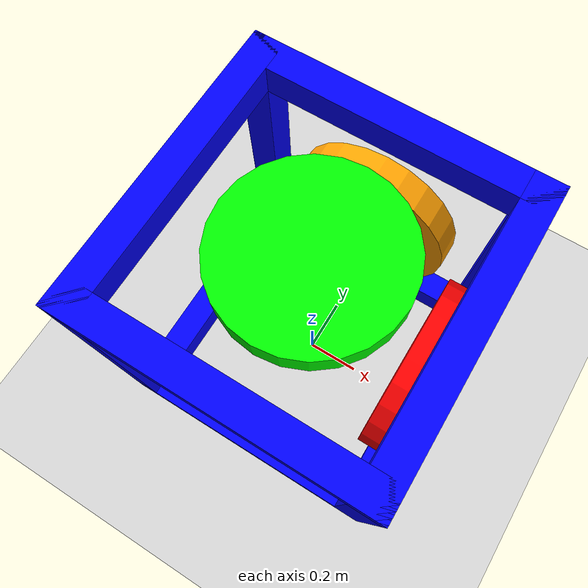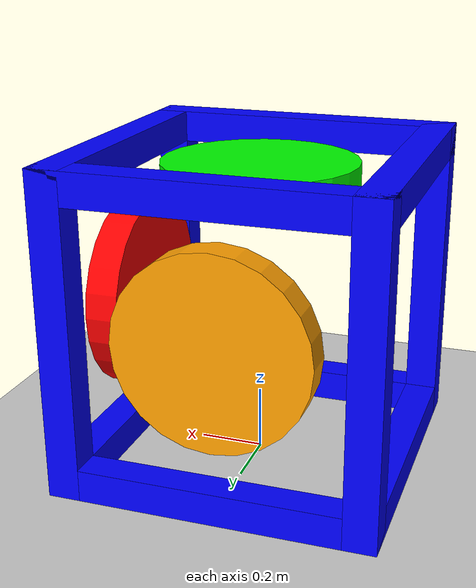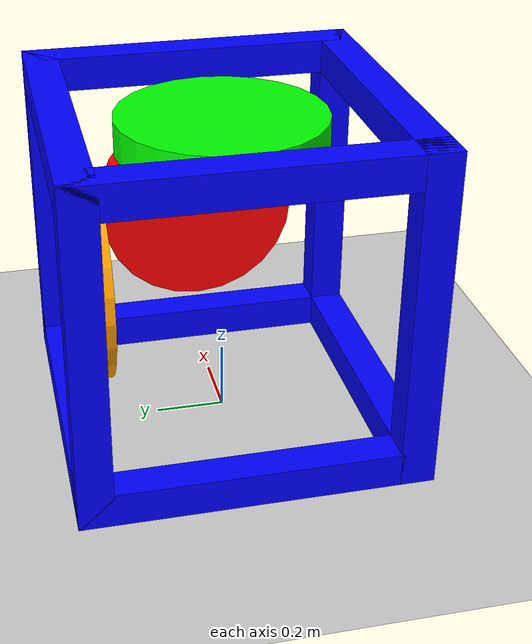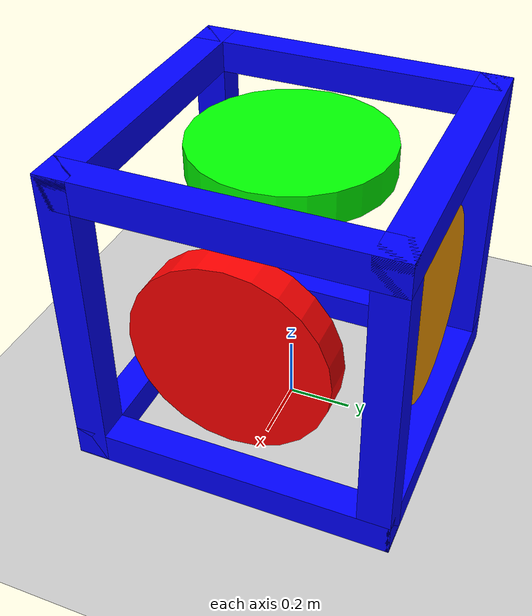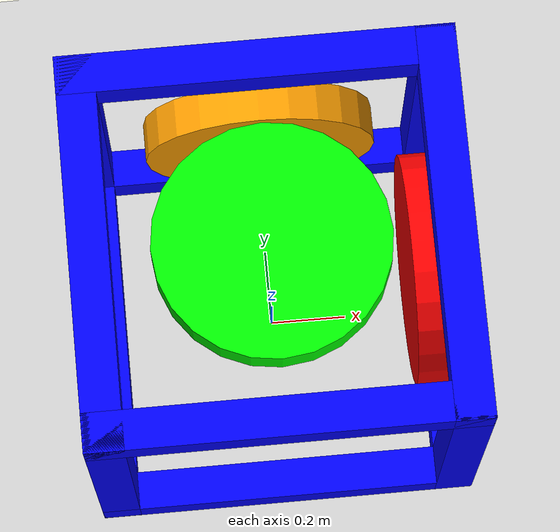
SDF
<?xml version='1.0' encoding='utf-8'?>
<sdf version="1.7">&lt;?xml version="1.0"?&gt;
	<world name="moving_cube">

		<physics name="1ms" type="ignored">
			<max_step_size>0.001</max_step_size>
			<real_time_factor>1.0</real_time_factor>
		</physics>
		<plugin
			filename="libignition-gazebo-physics-system.so"
			name="ignition::gazebo::systems::Physics">
		</plugin>
		<plugin
			filename="libignition-gazebo-user-commands-system.so"
			name="ignition::gazebo::systems::UserCommands">
		</plugin>
		<plugin
			filename="libignition-gazebo-scene-broadcaster-system.so"
			name="ignition::gazebo::systems::SceneBroadcaster">
		</plugin>

		<light type="directional" name="sun">
			<cast_shadows>true</cast_shadows>
			<pose>0 0 10 0 0 0</pose>
			<diffuse>0.8 0.8 0.8 1</diffuse>
			<specular>0.2 0.2 0.2 1</specular>
			<attenuation>
				<range>1000</range>
				<constant>0.9</constant>
				<linear>0.01</linear>
				<quadratic>0.001</quadratic>
			</attenuation>
			<direction>-0.5 0.1 -0.9</direction>
		</light>

		<model name="ground_plane">
			<static>true</static>
			<link name="link">
				<collision name="collision">
					<geometry>
					<plane>
						<normal>0 0 1</normal>
					</plane>
					</geometry>
				</collision>
				<visual name="visual">
					<geometry>
					<plane>
						<normal>0 0 1</normal>
						<size>100 100</size>
					</plane>
					</geometry>
					<material>
						<ambient>0.8 0.8 0.8 1</ambient>
						<diffuse>0.8 0.8 0.8 1</diffuse>
						<specular>0.8 0.8 0.8 1</specular>
					</material>
				</visual>
			</link>
		</model>

		  <model name="robot">
    <link name="cube_frame">
      <inertial>
        <pose>0 0 0.5 0 0 0</pose>
        <mass>1</mass>
        <inertia>
          <ixx>0.10000000000000001</ixx>
          <ixy>0</ixy>
          <ixz>0</ixz>
          <iyy>0.10000000000000001</iyy>
          <iyz>0</iyz>
          <izz>0.10000000000000001</izz>
        </inertia>
      </inertial>
      <collision name="cube_frame_fixed_joint_lump__collision_collision">
        <pose>0 0 0.5 0 0 0</pose>
        <geometry>
          <box>
            <size>1 1 1</size>
          </box>
        </geometry>
      </collision>
      <visual name="cube_frame_fixed_joint_lump__ZXY_visual">
        <pose>0.45 0.45 0.5 0 0 0</pose>
        <geometry>
          <box>
            <size>0.1 0.1 1</size>
          </box>
        </geometry>
        <material>
          <diffuse>0 0 1 1</diffuse>
          <ambient>0 0 1 1</ambient>
        </material>
      </visual>
      <visual name="cube_frame_fixed_joint_lump__ZX_Y_visual_1">
        <pose>-0.45 0.45 0.5 0 0 0</pose>
        <geometry>
          <box>
            <size>0.1 0.1 1</size>
          </box>
        </geometry>
        <material>
          <diffuse>0 0 1 1</diffuse>
          <ambient>0 0 1 1</ambient>
        </material>
      </visual>
      <visual name="cube_frame_fixed_joint_lump__ZXY__visual_2">
        <pose>0.45 -0.45 0.5 0 0 0</pose>
        <geometry>
          <box>
            <size>0.1 0.1 1</size>
          </box>
        </geometry>
        <material>
          <diffuse>0 0 1 1</diffuse>
          <ambient>0 0 1 1</ambient>
        </material>
      </visual>
      <visual name="cube_frame_fixed_joint_lump__ZX_Y__visual_3">
        <pose>-0.45 -0.45 0.5 0 0 0</pose>
        <geometry>
          <box>
            <size>0.1 0.1 1</size>
          </box>
        </geometry>
        <material>
          <diffuse>0 0 1 1</diffuse>
          <ambient>0 0 1 1</ambient>
        </material>
      </visual>
      <visual name="cube_frame_fixed_joint_lump__XYZ_visual_4">
        <pose>0 0.45 0.95 0 1.570796326794897 0</pose>
        <geometry>
          <box>
            <size>0.1 0.1 1</size>
          </box>
        </geometry>
        <material>
          <diffuse>0 0 1 1</diffuse>
          <ambient>0 0 1 1</ambient>
        </material>
      </visual>
      <visual name="cube_frame_fixed_joint_lump__XY_Z_visual_5">
        <pose>0 -0.45 0.95 0 1.570796326794897 0</pose>
        <geometry>
          <box>
            <size>0.1 0.1 1</size>
          </box>
        </geometry>
        <material>
          <diffuse>0 0 1 1</diffuse>
          <ambient>0 0 1 1</ambient>
        </material>
      </visual>
      <visual name="cube_frame_fixed_joint_lump__XYZ__visual_6">
        <pose>0 0.45 0.05 0 1.570796326794897 0</pose>
        <geometry>
          <box>
            <size>0.1 0.1 1</size>
          </box>
        </geometry>
        <material>
          <diffuse>0 0 1 1</diffuse>
          <ambient>0 0 1 1</ambient>
        </material>
      </visual>
      <visual name="cube_frame_fixed_joint_lump__XY_Z__visual_7">
        <pose>0 -0.45 0.05 0 1.570796326794897 0</pose>
        <geometry>
          <box>
            <size>0.1 0.1 1</size>
          </box>
        </geometry>
        <material>
          <diffuse>0 0 1 1</diffuse>
          <ambient>0 0 1 1</ambient>
        </material>
      </visual>
      <visual name="cube_frame_fixed_joint_lump__YZX_visual_8">
        <pose>0.45 0 0.95 1.570796326794896 0 0</pose>
        <geometry>
          <box>
            <size>0.1 0.1 1</size>
          </box>
        </geometry>
        <material>
          <diffuse>0 0 1 1</diffuse>
          <ambient>0 0 1 1</ambient>
        </material>
      </visual>
      <visual name="cube_frame_fixed_joint_lump__YZ_X_visual_9">
        <pose>0.45 0 0.05 1.570796326794896 0 0</pose>
        <geometry>
          <box>
            <size>0.1 0.1 1</size>
          </box>
        </geometry>
        <material>
          <diffuse>0 0 1 1</diffuse>
          <ambient>0 0 1 1</ambient>
        </material>
      </visual>
      <visual name="cube_frame_fixed_joint_lump__YZX__visual_10">
        <pose>-0.45 0 0.95 1.570796326794896 0 0</pose>
        <geometry>
          <box>
            <size>0.1 0.1 1</size>
          </box>
        </geometry>
        <material>
          <diffuse>0 0 1 1</diffuse>
          <ambient>0 0 1 1</ambient>
        </material>
      </visual>
      <visual name="cube_frame_fixed_joint_lump__YZ_X__visual_11">
        <pose>-0.45 0 0.05 1.570796326794896 0 0</pose>
        <geometry>
          <box>
            <size>0.1 0.1 1</size>
          </box>
        </geometry>
        <material>
          <diffuse>0 0 1 1</diffuse>
          <ambient>0 0 1 1</ambient>
        </material>
      </visual>
    </link>
    <joint name="cube_disk_joint_X" type="revolute">
      <pose relative_to="cube_frame">0.4 0 0.5 0 0 0</pose>
      <parent>cube_frame</parent>
      <child>disk_link_X</child>
      <axis>
        <xyz>1 0 0</xyz>
        <limit>
          <effort>1000</effort>
          <velocity>100</velocity>
        </limit>
        <dynamics>
          <spring_reference>0</spring_reference>
          <spring_stiffness>0</spring_stiffness>
        </dynamics>
      </axis>
    </joint>
    <link name="disk_link_X">
      <pose relative_to="cube_disk_joint_X">0 0 0 0 0 0</pose>
      <inertial>
        <pose>0 0 0 0 0 0</pose>
        <mass>1</mass>
        <inertia>
          <ixx>0.10000000000000001</ixx>
          <ixy>0</ixy>
          <ixz>0</ixz>
          <iyy>0.10000000000000001</iyy>
          <iyz>0</iyz>
          <izz>0.10000000000000001</izz>
        </inertia>
      </inertial>
      <collision name="disk_link_X_fixed_joint_lump__disk_collision_collision">
        <pose>0 0 0 0 1.570796326794897 0</pose>
        <geometry>
          <cylinder>
            <length>0.10000000000000001</length>
            <radius>0.29999999999999999</radius>
          </cylinder>
        </geometry>
      </collision>
      <visual name="disk_link_X_fixed_joint_lump__disk_visual">
        <pose>0 0 0 0 1.570796326794897 0</pose>
        <geometry>
          <cylinder>
            <length>0.10000000000000001</length>
            <radius>0.29999999999999999</radius>
          </cylinder>
        </geometry>
        <material>
				<diffuse>1 0 0 1</diffuse>
				<ambient>1 0 0 1</ambient>
		  </material>
      </visual>
    </link>
    <joint name="cube_disk_joint_Y" type="revolute">
      <pose relative_to="cube_frame">0 0.4 0.5 0 0 0</pose>
      <parent>cube_frame</parent>
      <child>disk_link_Y</child>
      <axis>
        <xyz>0 1 0</xyz>
        <limit>
          <effort>1000</effort>
          <velocity>100</velocity>
        </limit>
        <dynamics>
          <spring_reference>0</spring_reference>
          <spring_stiffness>0</spring_stiffness>
        </dynamics>
      </axis>
    </joint>
    <link name="disk_link_Y">
      <pose relative_to="cube_disk_joint_Y">0 0 0 0 0 0</pose>
      <inertial>
        <pose>0 0 0 0 0 0</pose>
        <mass>1</mass>
        <inertia>
          <ixx>0.10000000000000001</ixx>
          <ixy>0</ixy>
          <ixz>0</ixz>
          <iyy>0.10000000000000001</iyy>
          <iyz>0</iyz>
          <izz>0.10000000000000001</izz>
        </inertia>
      </inertial>
      <collision name="disk_link_Y_fixed_joint_lump__disk_collision_collision">
        <pose>0 0 0 1.570796326794896 0 0</pose>
        <geometry>
          <cylinder>
            <length>0.10000000000000001</length>
            <radius>0.29999999999999999</radius>
          </cylinder>
        </geometry>
      </collision>
      <visual name="disk_link_Y_fixed_joint_lump__disk_visual">
        <pose>0 0 0 1.570796326794896 0 0</pose>
        <geometry>
          <cylinder>
            <length>0.10000000000000001</length>
            <radius>0.29999999999999999</radius>
          </cylinder>
        </geometry>
        <material>
          <diffuse>1 0.625 0 1</diffuse>
          <ambient>1 0.625 0 1</ambient>
        </material>
      </visual>
    </link>
    <joint name="cube_disk_joint_Z" type="revolute">
      <pose relative_to="cube_frame">0 0 0.9 0 0 0</pose>
      <parent>cube_frame</parent>
      <child>disk_link_Z</child>
      <axis>
        <xyz>0 0 1</xyz>
        <limit>
          <effort>1000</effort>
          <velocity>100</velocity>
        </limit>
        <dynamics>
          <spring_reference>0</spring_reference>
          <spring_stiffness>0</spring_stiffness>
        </dynamics>
      </axis>
    </joint>
    <link name="disk_link_Z">
      <pose relative_to="cube_disk_joint_Z">0 0 0 0 0 0</pose>
      <inertial>
        <pose>0 0 0 0 0 0</pose>
        <mass>1</mass>
        <inertia>
          <ixx>0.10000000000000001</ixx>
          <ixy>0</ixy>
          <ixz>0</ixz>
          <iyy>0.10000000000000001</iyy>
          <iyz>0</iyz>
          <izz>0.10000000000000001</izz>
        </inertia>
      </inertial>
      <collision name="disk_link_Z_fixed_joint_lump__disk_collision_collision">
        <pose>0 0 0 0 0 0</pose>
        <geometry>
          <cylinder>
            <length>0.10000000000000001</length>
            <radius>0.29999999999999999</radius>
          </cylinder>
        </geometry>
      </collision>
      <visual name="disk_link_Z_fixed_joint_lump__disk_visual">
        <pose>0 0 0 0 0 0</pose>
        <geometry>
          <cylinder>
            <length>0.10000000000000001</length>
            <radius>0.29999999999999999</radius>
          </cylinder>
        </geometry>
			<material>
				 <diffuse>0 1 0 1</diffuse>
				 <ambient>0 1 0 1</ambient>
			</material>
      </visual>
    </link>

			<!-- JointController plugin to control the joint velocity (for cube_disk_joint_X)-->
			<plugin filename="libignition-gazebo-joint-controller-system.so"
			name="ignition::gazebo::systems::JointController">
				<joint_name>cube_disk_joint_X</joint_name>
				<topic>cmd_vel_r</topic>
				<!-- PID controller for smooth velocity control -->
				<use_force_commands>true</use_force_commands>
				<p_gain>0.15</p_gain>
			</plugin>

			<!-- JointController plugin to control the joint velocity (for cube_disk_joint_y)-->
			<plugin filename="libignition-gazebo-joint-controller-system.so"
			name="ignition::gazebo::systems::JointController">
				<joint_name>cube_disk_joint_Y</joint_name>
				<topic>cmd_vel_y</topic>
				<!-- PID controller for smooth velocity control -->
				<use_force_commands>true</use_force_commands>
				<p_gain>0.15</p_gain>
			</plugin>

			<!-- JointController plugin to control the joint velocity (for cube_disk_joint_Z)-->
			<plugin filename="libignition-gazebo-joint-controller-system.so"
			name="ignition::gazebo::systems::JointController">
				<joint_name>cube_disk_joint_Z</joint_name>
				<topic>cmd_vel_g</topic>
				<!-- PID controller for smooth velocity control -->
				<use_force_commands>true</use_force_commands>
				<p_gain>0.15</p_gain>
			</plugin>
	</model>

</world></sdf>
